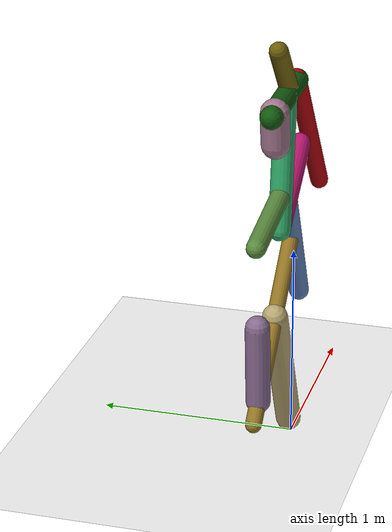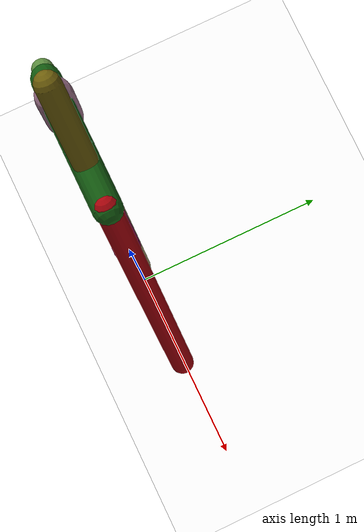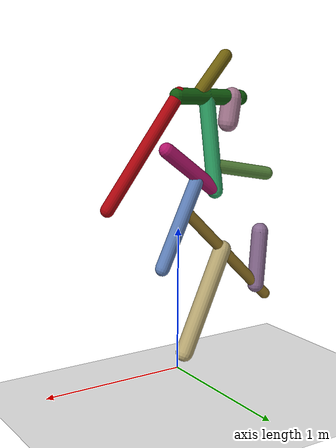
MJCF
<mujoco model="morphology">
  <option timestep="0.01"/>
  <default>
    <default class="/"/>
    <default class="0/"/>
    <default class="0/1/"/>
    <default class="0/1/2/"/>
    <default class="0/1/3/"/>
    <default class="0/1/3/4/"/>
    <default class="0/1/3/5/"/>
    <default class="0/1/3/5/6/"/>
    <default class="0/1/3/5/6/7/"/>
    <default class="0/1/3/5/6/7/8/"/>
    <default class="0/1/3/5/6/7/9/"/>
    <default class="0/1/10/"/>
  </default>
  <asset>
    <texture name="texplane" type="2d" builtin="checker" rgb1="0.10000000000000001 0.20000000000000001 0.29999999999999999" rgb2="0.20000000000000001 0.29999999999999999 0.40000000000000002" width="300" height="300"/>
    <material name="MatPlane" class="/" texture="texplane" texrepeat="20 20" specular="1" shininess="1" reflectance="0.5"/>
  </asset>
  <worldbody>
    <light name="//unnamed_light_0" class="/" directional="true" pos="0 0 1.5" dir="0 0 -1.3" cutoff="100" exponent="1" diffuse="1 1 1" specular="0.10000000000000001 0.10000000000000001 0.10000000000000001"/>
    <geom name="ground" class="/" type="plane" size="15 15 0.5" material="MatPlane" rgba="1 1 1 1"/>
    <site name="body" class="/" size="9.9999999999999995e-07 9.9999999999999995e-07 9.9999999999999995e-07" pos="0 0 1.9004449605941773"/>
    <body pos="0 0 1.9004449605941773" name="0/">
      <joint name="0/rootx/" class="/" type="slide" axis="1 0 0" limited="false" stiffness="0" armature="0" damping="0"/>
      <joint name="0/rootz/" class="/" type="slide" axis="0 0 1" limited="false" stiffness="0" armature="0" damping="0"/>
      <joint name="0/rooty/" class="/" type="hinge" axis="0 1 0" limited="false" stiffness="0" armature="0" damping="0"/>
      <geom name="0/geom" class="0/" type="capsule" contype="1" conaffinity="1" condim="3" size="0.045901252511637181" rgba="0.65642089768076184 0.013761691292352829 0.043955004374248818 1" friction="0.59999999999999998 0.10000000000000001 0.10000000000000001" fromto="0 0 0 0.54297954819056105 0 -0.72240299836472655"/>
      <site name="0/end0" class="0/" size="0.0050000000000000001" pos="0.54297954819056105 0 -0.72240299836472655"/>
      <site name="0/attach1" class="0/" size="9.9999999999999995e-07 9.9999999999999995e-07 9.9999999999999995e-07" pos="0.010499585712098174 0 -0.013969093726059086"/>
      <body pos="0.010499585712098174 0 -0.013969093726059086" name="0/1/">
        <joint name="0/1/joint/" class="0/" type="hinge" axis="0 1 0" limited="true" range="-38.454902254172012 38.454902254172012"/>
        <geom name="0/1/geom" class="0/1/" type="capsule" contype="1" conaffinity="1" condim="3" size="0.054606758523712086" rgba="0.070051480222937501 0.34659895060157042 0.058555860807116722 1" friction="0.59999999999999998 0.10000000000000001 0.10000000000000001" fromto="0 0 0 -0.50751938954536202 0 -0.023373999754865871"/>
        <site name="0/1/end1" class="0/1/" size="0.0050000000000000001" pos="-0.50751938954536202 0 -0.023373999754865871"/>
        <site name="0/1/attach2" class="0/1/" size="9.9999999999999995e-07 9.9999999999999995e-07 9.9999999999999995e-07" pos="-0.15353817385905705 0 -0.0070712593687484839"/>
        <body pos="-0.15353817385905705 0 -0.0070712593687484839" name="0/1/2/">
          <joint name="0/1/2/joint/" class="0/1/" type="hinge" axis="0 1 0" limited="true" range="-58.36977497259948 58.36977497259948"/>
          <geom name="0/1/2/geom" class="0/1/2/" type="capsule" contype="1" conaffinity="1" condim="3" size="0.046303013397630488" rgba="0.42650537502268882 0.36592857412596858 0.043308360890892406 1" friction="0.59999999999999998 0.10000000000000001 0.10000000000000001" fromto="0 0 0 -0.22799807476557277 0 0.26354299402241765"/>
          <site name="0/1/2/end2" class="0/1/2/" size="0.0050000000000000001" pos="-0.22799807476557277 0 0.26354299402241765"/>
        </body>
        <site name="0/1/attach3" class="0/1/" size="9.9999999999999995e-07 9.9999999999999995e-07 9.9999999999999995e-07" pos="-0.23293704207575008 0 -0.010728004636936378"/>
        <body pos="-0.23293704207575008 0 -0.010728004636936378" name="0/1/3/">
          <joint name="0/1/3/joint/" class="0/1/" type="hinge" axis="0 1 0" limited="true" range="-46.238758400743222 46.238758400743222"/>
          <geom name="0/1/3/geom" class="0/1/3/" type="capsule" contype="1" conaffinity="1" condim="3" size="0.054922823667617492" rgba="0.18552973692489294 0.66215714836095174 0.40905364175057224 1" friction="0.59999999999999998 0.10000000000000001 0.10000000000000001" fromto="0 0 0 -0.080945360360685337 0 -0.64198663846114923"/>
          <site name="0/1/3/end3" class="0/1/3/" size="0.0050000000000000001" pos="-0.080945360360685337 0 -0.64198663846114923"/>
          <site name="0/1/3/attach4" class="0/1/3/" size="9.9999999999999995e-07 9.9999999999999995e-07 9.9999999999999995e-07" pos="-0.058650146352693326 0 -0.4651608212557623"/>
          <body pos="-0.058650146352693326 0 -0.4651608212557623" name="0/1/3/4/">
            <joint name="0/1/3/4/joint/" class="0/1/3/" type="hinge" axis="0 1 0" limited="true" range="-65.280840604572717 65.280840604572717"/>
            <geom name="0/1/3/4/geom" class="0/1/3/4/" type="capsule" contype="1" conaffinity="1" condim="3" size="0.047506736213055394" rgba="0.35336660039801093 0.54158294313171662 0.24391864360401994 1" friction="0.59999999999999998 0.10000000000000001 0.10000000000000001" fromto="0 0 0 -0.4722547837574283 0 -0.089224696919625091"/>
            <site name="0/1/3/4/end4" class="0/1/3/4/" size="0.0050000000000000001" pos="-0.4722547837574283 0 -0.089224696919625091"/>
          </body>
          <site name="0/1/3/attach5" class="0/1/3/" size="9.9999999999999995e-07 9.9999999999999995e-07 9.9999999999999995e-07" pos="-0.080336860491785733 0 -0.63716055845362052"/>
          <body pos="-0.080336860491785733 0 -0.63716055845362052" name="0/1/3/5/">
            <joint name="0/1/3/5/joint/" class="0/1/3/" type="hinge" axis="0 1 0" limited="true" range="-64.63620585199871 64.63620585199871"/>
            <geom name="0/1/3/5/geom" class="0/1/3/5/" type="capsule" contype="1" conaffinity="1" condim="3" size="0.052460534549442418" rgba="0.69706191730833478 0.07895314027349376 0.41569257362164291 1" friction="0.59999999999999998 0.10000000000000001 0.10000000000000001" fromto="0 0 0 0.3967338384140604 0 0.29547606889073297"/>
            <site name="0/1/3/5/end5" class="0/1/3/5/" size="0.0050000000000000001" pos="0.3967338384140604 0 0.29547606889073297"/>
            <site name="0/1/3/5/attach6" class="0/1/3/5/" size="9.9999999999999995e-07 9.9999999999999995e-07 9.9999999999999995e-07" pos="0.14050810541925493 0 0.10464643702319185"/>
            <body pos="0.14050810541925493 0 0.10464643702319185" name="0/1/3/5/6/">
              <joint name="0/1/3/5/6/joint/" class="0/1/3/5/" type="hinge" axis="0 1 0" limited="true" range="-35.151370387977565 35.151370387977565"/>
              <geom name="0/1/3/5/6/geom" class="0/1/3/5/6/" type="capsule" contype="1" conaffinity="1" condim="3" size="0.0501363660987727" rgba="0.36531797412955191 0.49423091448367729 0.71154513112654216 1" friction="0.59999999999999998 0.10000000000000001 0.10000000000000001" fromto="0 0 0 0.28859002205796602 0 -0.608963969362323"/>
              <site name="0/1/3/5/6/end6" class="0/1/3/5/6/" size="0.0050000000000000001" pos="0.28859002205796602 0 -0.608963969362323"/>
              <site name="0/1/3/5/6/attach7" class="0/1/3/5/6/" size="9.9999999999999995e-07 9.9999999999999995e-07 9.9999999999999995e-07" pos="0.10703158802893945 0 -0.22585112343268807"/>
              <body pos="0.10703158802893945 0 -0.22585112343268807" name="0/1/3/5/6/7/">
                <joint name="0/1/3/5/6/7/joint/" class="0/1/3/5/6/" type="hinge" axis="0 1 0" limited="true" range="-66.119062223920793 66.119062223920793"/>
                <geom name="0/1/3/5/6/7/geom" class="0/1/3/5/6/7/" type="capsule" contype="1" conaffinity="1" condim="3" size="0.040005312226718624" rgba="0.57168275238005239 0.45452158706068679 0.1397844200478644 1" friction="0.59999999999999998 0.10000000000000001 0.10000000000000001" fromto="0 0 0 -0.71441108486832783 0 -0.69406293777801309"/>
                <site name="0/1/3/5/6/7/end7" class="0/1/3/5/6/7/" size="0.0050000000000000001" pos="-0.71441108486832783 0 -0.69406293777801309"/>
                <site name="0/1/3/5/6/7/attach8" class="0/1/3/5/6/7/" size="9.9999999999999995e-07 9.9999999999999995e-07 9.9999999999999995e-07" pos="-0.6286562455202479 0 -0.61075060264315184"/>
                <body pos="-0.6286562455202479 0 -0.61075060264315184" name="0/1/3/5/6/7/8/">
                  <joint name="0/1/3/5/6/7/8/joint/" class="0/1/3/5/6/7/" type="hinge" axis="0 1 0" limited="true" range="-54.231197280279417 54.231197280279417"/>
                  <geom name="0/1/3/5/6/7/8/geom" class="0/1/3/5/6/7/8/" type="capsule" contype="1" conaffinity="1" condim="3" size="0.059673634513854407" rgba="0.5300772897402265 0.41240752769709077 0.56027255497830242 1" friction="0.59999999999999998 0.10000000000000001 0.10000000000000001" fromto="0 0 0 -0.028153190188079935 0 0.39471007362462585"/>
                  <site name="0/1/3/5/6/7/8/end8" class="0/1/3/5/6/7/8/" size="0.0050000000000000001" pos="-0.028153190188079935 0 0.39471007362462585"/>
                </body>
                <site name="0/1/3/5/6/7/attach9" class="0/1/3/5/6/7/" size="9.9999999999999995e-07 9.9999999999999995e-07 9.9999999999999995e-07" pos="-0.31829760452112815 0 -0.30923172268856325"/>
                <body pos="-0.31829760452112815 0 -0.30923172268856325" name="0/1/3/5/6/7/9/">
                  <joint name="0/1/3/5/6/7/9/joint/" class="0/1/3/5/6/7/" type="hinge" axis="0 1 0" limited="true" range="-38.701088514898032 38.701088514898032"/>
                  <geom name="0/1/3/5/6/7/9/geom" class="0/1/3/5/6/7/9/" type="capsule" contype="1" conaffinity="1" condim="3" size="0.062843370150259537" rgba="0.71782910565701918 0.65100694044418672 0.44407766697855144 1" friction="0.59999999999999998 0.10000000000000001 0.10000000000000001" fromto="0 0 0 0.31521026076077496 0 -0.7081509501218991"/>
                  <site name="0/1/3/5/6/7/9/end9" class="0/1/3/5/6/7/9/" size="0.0050000000000000001" pos="0.31521026076077496 0 -0.7081509501218991"/>
                </body>
              </body>
            </body>
          </body>
        </body>
        <site name="0/1/attach10" class="0/1/" size="9.9999999999999995e-07 9.9999999999999995e-07 9.9999999999999995e-07" pos="-0.44210306942254257 0 -0.020361226091410903"/>
        <body pos="-0.44210306942254257 0 -0.020361226091410903" name="0/1/10/">
          <joint name="0/1/10/joint/" class="0/1/" type="hinge" axis="0 1 0" limited="true" range="-55.829020372985759 55.829020372985759"/>
          <geom name="0/1/10/geom" class="0/1/10/" type="capsule" contype="1" conaffinity="1" condim="3" size="0.069496371561143438" rgba="0.63930352676994462 0.46412828049516397 0.55618915283146819 1" friction="0.59999999999999998 0.10000000000000001 0.10000000000000001" fromto="0 0 0 0.026368741223320225 0 -0.16332242885566783"/>
          <site name="0/1/10/end10" class="0/1/10/" size="0.0050000000000000001" pos="0.026368741223320225 0 -0.16332242885566783"/>
        </body>
      </body>
      <camera name="0/side" class="0/" mode="trackcom" pos="0.40000000000000002 -4 0.20000000000000001" quat="0.70699999999999996 0.70699999999999996 0 0"/>
    </body>
  </worldbody>
  <actuator>
    <motor name="0/1/motor" class="0/1/" ctrllimited="true" ctrlrange="-1 1" gear="51" joint="0/1/joint/"/>
    <motor name="0/1/2/motor" class="0/1/2/" ctrllimited="true" ctrlrange="-1 1" gear="79" joint="0/1/2/joint/"/>
    <motor name="0/1/3/motor" class="0/1/3/" ctrllimited="true" ctrlrange="-1 1" gear="76" joint="0/1/3/joint/"/>
    <motor name="0/1/3/4/motor" class="0/1/3/4/" ctrllimited="true" ctrlrange="-1 1" gear="64" joint="0/1/3/4/joint/"/>
    <motor name="0/1/3/5/motor" class="0/1/3/5/" ctrllimited="true" ctrlrange="-1 1" gear="88" joint="0/1/3/5/joint/"/>
    <motor name="0/1/3/5/6/motor" class="0/1/3/5/6/" ctrllimited="true" ctrlrange="-1 1" gear="83" joint="0/1/3/5/6/joint/"/>
    <motor name="0/1/3/5/6/7/motor" class="0/1/3/5/6/7/" ctrllimited="true" ctrlrange="-1 1" gear="89" joint="0/1/3/5/6/7/joint/"/>
    <motor name="0/1/3/5/6/7/8/motor" class="0/1/3/5/6/7/8/" ctrllimited="true" ctrlrange="-1 1" gear="50" joint="0/1/3/5/6/7/8/joint/"/>
    <motor name="0/1/3/5/6/7/9/motor" class="0/1/3/5/6/7/9/" ctrllimited="true" ctrlrange="-1 1" gear="66" joint="0/1/3/5/6/7/9/joint/"/>
    <motor name="0/1/10/motor" class="0/1/10/" ctrllimited="true" ctrlrange="-1 1" gear="77" joint="0/1/10/joint/"/>
  </actuator>
  <sensor>
    <subtreelinvel name="velocity" body="0/"/>
  </sensor>
</mujoco>
